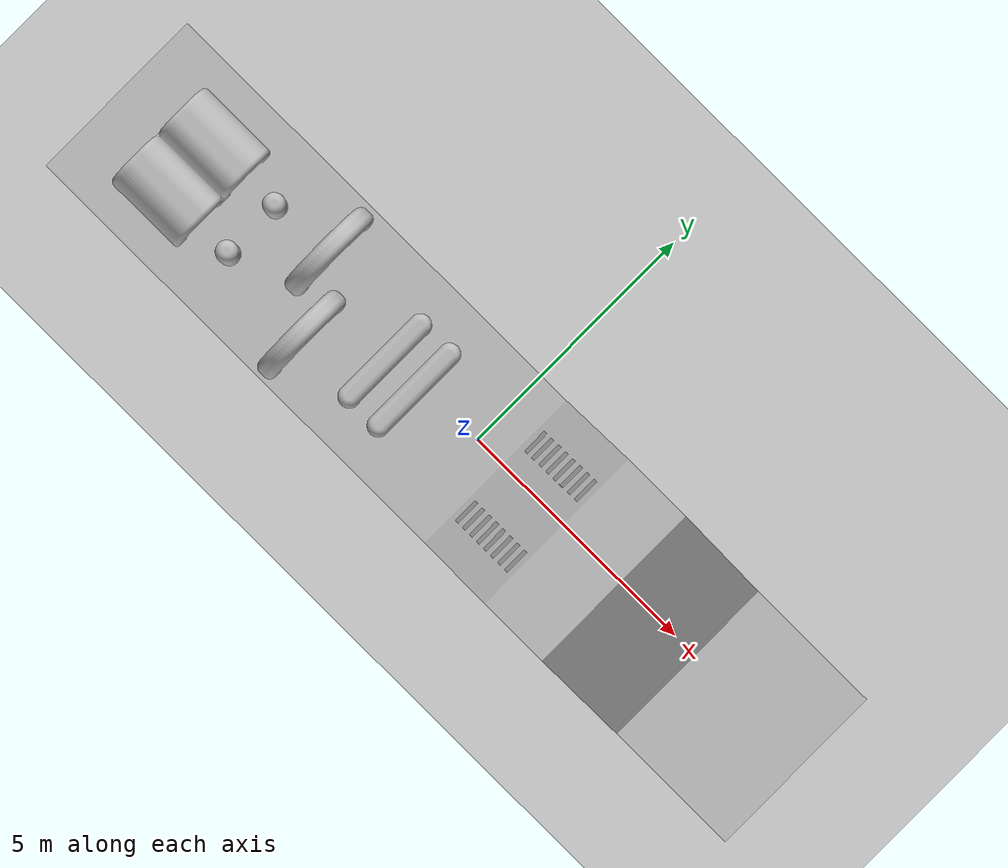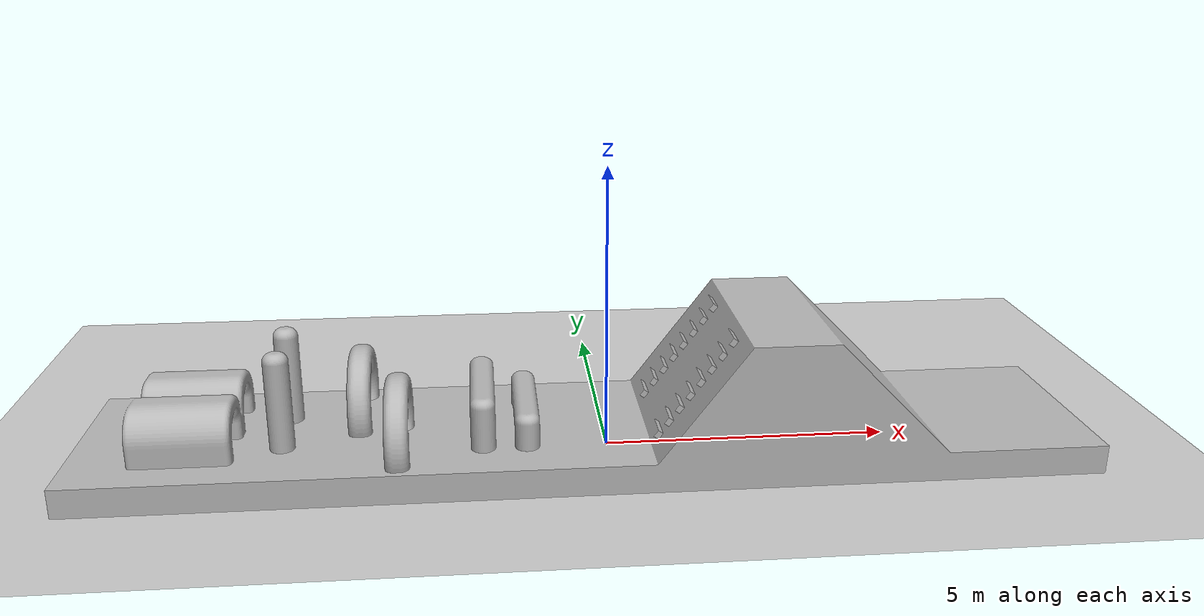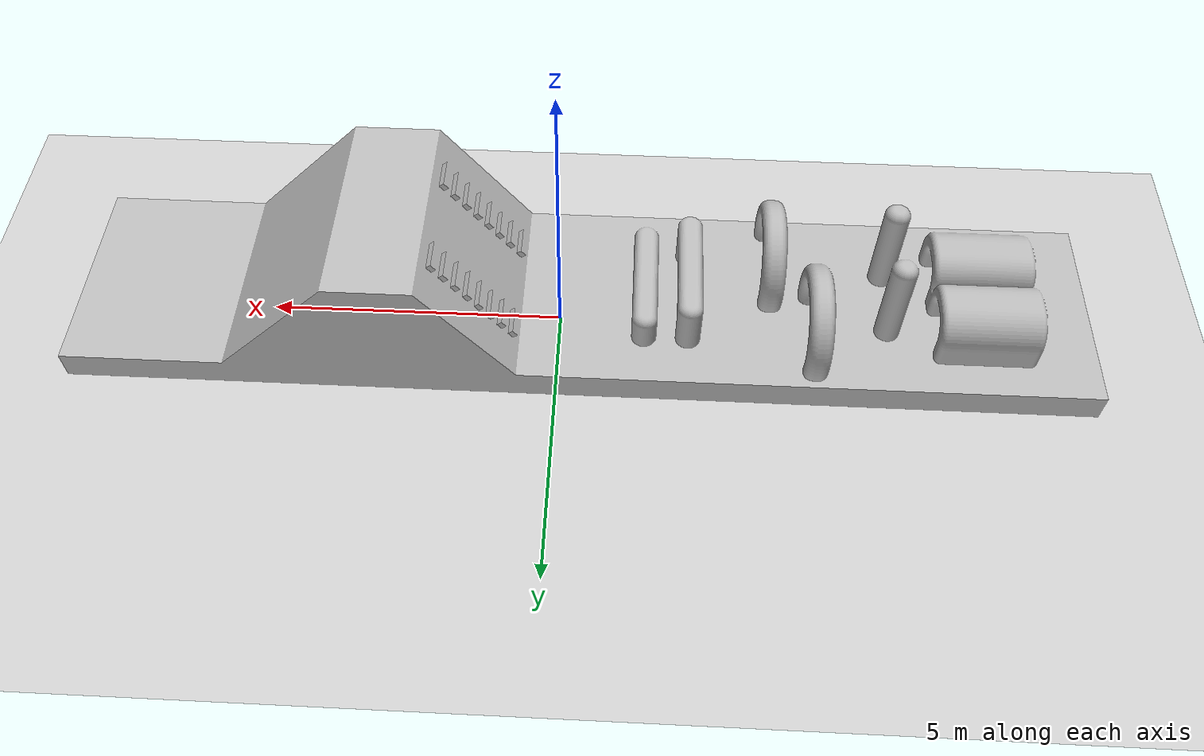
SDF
<sdf version="1.6">
 <world name="default">
  <light name="sun" type="directional">
   <pose>0 0 10 0 -0 0</pose>
   <diffuse>0.8 0.8 0.8 1</diffuse>
   <specular>0.2 0.2 0.2 1</specular>
   <attenuation>
    <range>1000</range>
    <constant>0.9</constant>
    <linear>0.01</linear>
    <quadratic>0.001</quadratic>
   </attenuation>
   <direction>-0.5 0.1 -0.9</direction>
  </light>
  <model name="ground_plane">
   <static>1</static>
   <link name="link">
    <collision name="collision">
     <geometry><plane><normal>0 0 1</normal><size>100 100</size></plane></geometry>
     <surface>
      <friction>
       <ode><mu>1.01</mu><mu2>1.01</mu2><fdir1>0 0 0</fdir1><slip1>0</slip1><slip2>0</slip2></ode>
      </friction>
      <bounce><restitution_coefficient>0</restitution_coefficient><threshold>100000</threshold></bounce>
      <contact>
       <ode>
        <soft_cfm>0</soft_cfm>
        <soft_erp>0.2</soft_erp>
        <kp>100000</kp>
        <kd>1</kd>
        <max_vel>100</max_vel>
        <min_depth>0.001</min_depth>
       </ode>
      </contact>
     </surface>
    </collision>
    <visual name="visual">
     <cast_shadows>0</cast_shadows>
     <geometry><plane><normal>0 0 1</normal><size>100 100</size></plane></geometry>
     <material>
      <script><uri>file://media/materials/scripts/gazebo.material</uri><name>Gazebo/Grey</name></script>
     </material>
    </visual>
   </link>
  </model>
  <gravity>0 0 -9.8</gravity>
  <magnetic_field>6e-06 2.3e-05 -4.2e-05</magnetic_field>
  <atmosphere type="adiabatic"/>
  <physics name="default_physics" default="0" type="ode">
   <ode>
    <solver>
     <type>quick</type>
     <iters>100</iters>
     <precon_iters>0</precon_iters>
     <sor>1.3</sor>
     <use_dynamic_moi_rescaling>0</use_dynamic_moi_rescaling>
    </solver>
    <constraints>
     <cfm>0</cfm>
     <erp>0.2</erp>
     <contact_max_correcting_vel>100</contact_max_correcting_vel>
     <contact_surface_layer>0.001</contact_surface_layer>
    </constraints>
   </ode>
   <real_time_update_rate>0</real_time_update_rate>
   <max_step_size>0.001</max_step_size>
   <real_time_factor>1</real_time_factor>
  </physics>
  <scene><ambient>0.4 0.4 0.4 1</ambient><background>0.7 0.7 0.7 1</background><shadows>1</shadows></scene>
  <audio><device>default</device></audio>
  <spherical_coordinates>
   <surface_model>EARTH_WGS84</surface_model>
   <latitude_deg>0</latitude_deg>
   <longitude_deg>0</longitude_deg>
   <elevation>0</elevation>
   <heading_deg>0</heading_deg>
  </spherical_coordinates>
  <model name="RoboyParkourTrack">
   <link name="mesh_link">
    <kinematic>1</kinematic>
    <visual name="track_visual">
     <geometry>
      <mesh>
       <uri>model://RoboyParkourTrack/RoboyParkourChallengeTrack-Simplistic-2019-09-23.obj</uri>
       <scale>0.0001 0.0001 0.0001</scale>
      </mesh>
     </geometry>
    </visual>
    <collision name="track_collision">
     <geometry>
      <mesh>
       <uri>model://RoboyParkourTrack/RoboyParkourChallengeTrack-Simplistic-2019-09-23.obj</uri>
       <scale>0.0001 0.0001 0.0001</scale>
      </mesh>
     </geometry>
     <surface>
      <friction><ode><mu>1</mu><mu2>1</mu2><fdir1>0 0 0</fdir1><slip1>0</slip1><slip2>0</slip2></ode></friction>
      <bounce><restitution_coefficient>0.05</restitution_coefficient><threshold>0</threshold></bounce>
     </surface>
     <max_contacts>1000</max_contacts>
    </collision>
    <inertial>
     <inertia><ixx>1</ixx><ixy>0</ixy><ixz>0</ixz><iyy>1</iyy><iyz>0</iyz><izz>1</izz></inertia>
     <mass>1</mass>
    </inertial>
   </link>
   <pose>-8.96284 1.6153 -3.8e-05 -0.004739 -0.000649 2e-06</pose>
  </model>
 </world>
</sdf>
